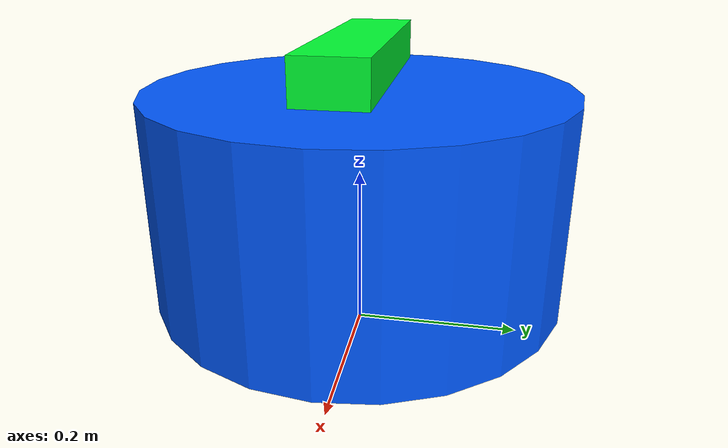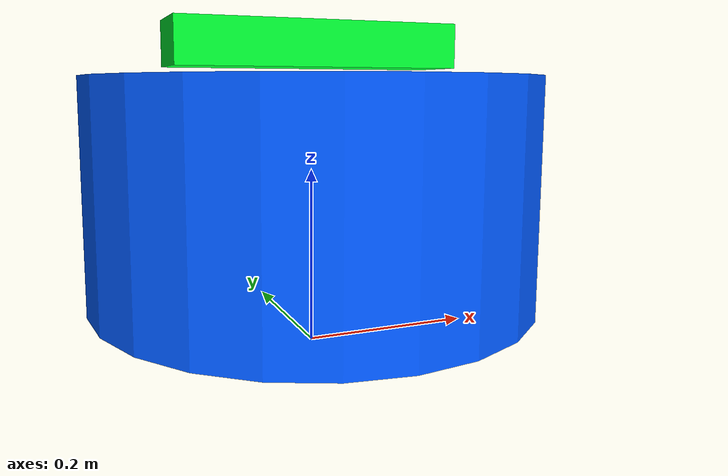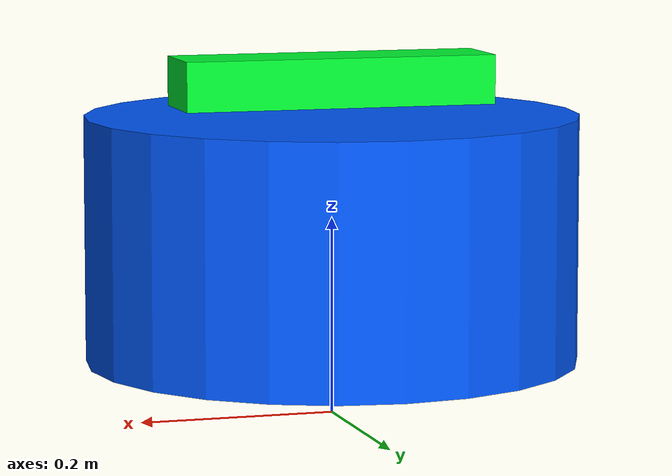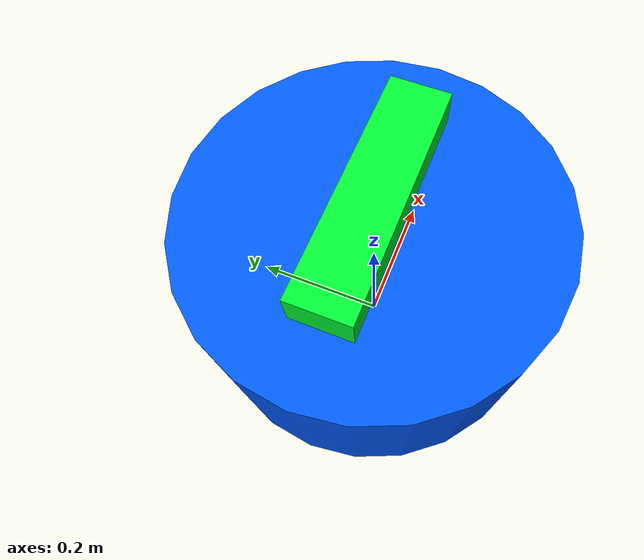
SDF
<?xml version="1.0" ?>
<sdf version="1.6">
  <model name="working_robot">
    <static>false</static>
    <link name="base_link">
      <gravity>false</gravity>
      <visual name="body">
        <pose>0 0 0.18 0 0 0</pose>
        <geometry>
          <cylinder>
            <radius>0.25</radius>
            <length>0.25</length>
          </cylinder>
        </geometry>
        <material>
          <ambient>0.0 0.25 0.9 1</ambient>
          <diffuse>0.0 0.35 1.0 1</diffuse>
        </material>
      </visual>
      <visual name="battery_indicator">
        <pose>0 0 0.34 0 0 0</pose>
        <geometry>
          <box>
            <size>0.32 0.08 0.05</size>
          </box>
        </geometry>
        <material>
          <ambient>0.0 1.0 0.2 1</ambient>
          <diffuse>0.0 1.0 0.2 1</diffuse>
        </material>
      </visual>
    </link>
  </model>
</sdf>
